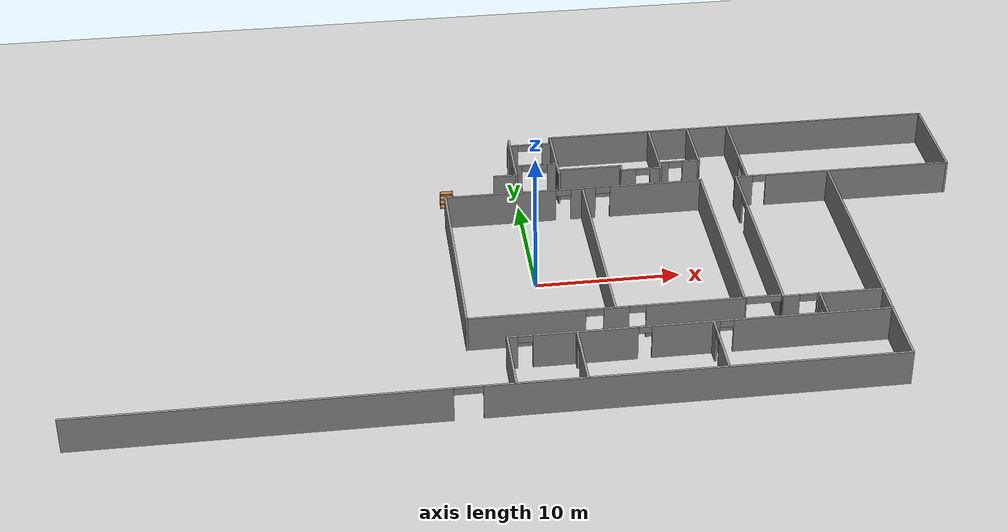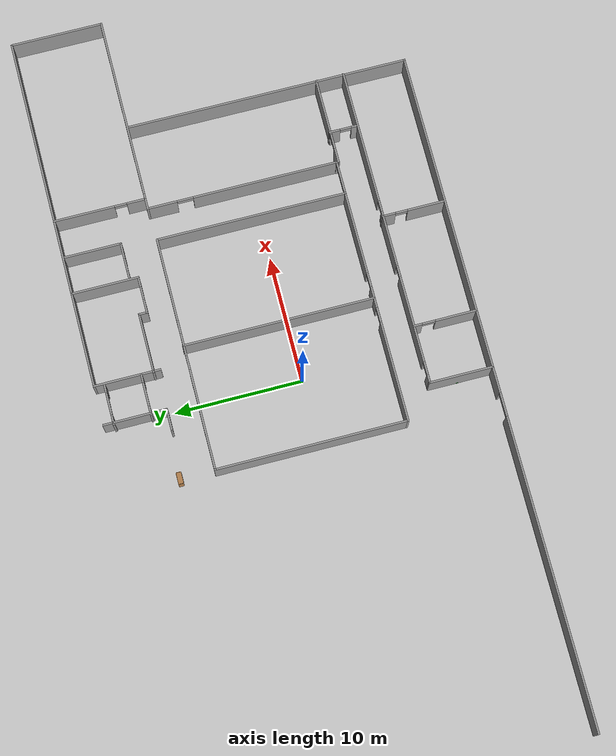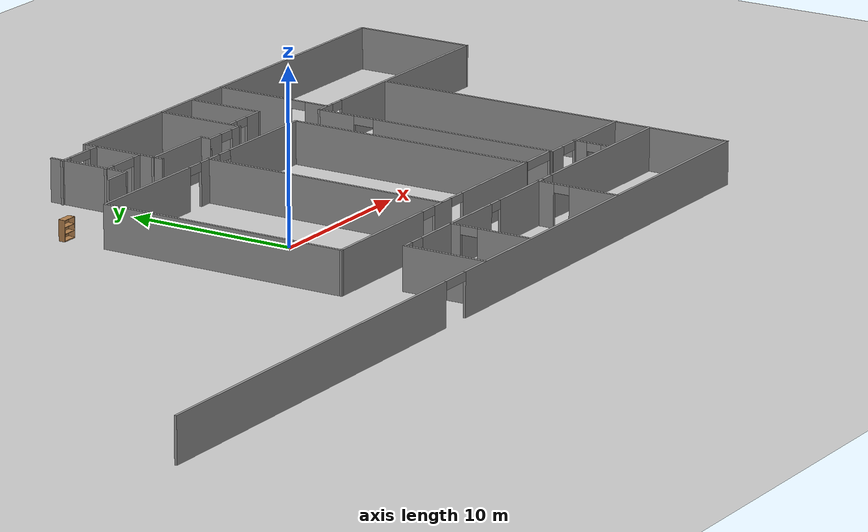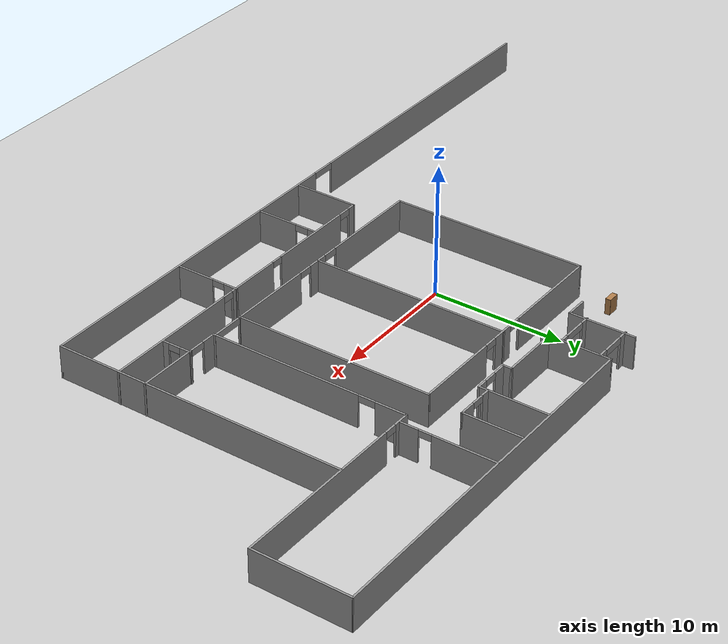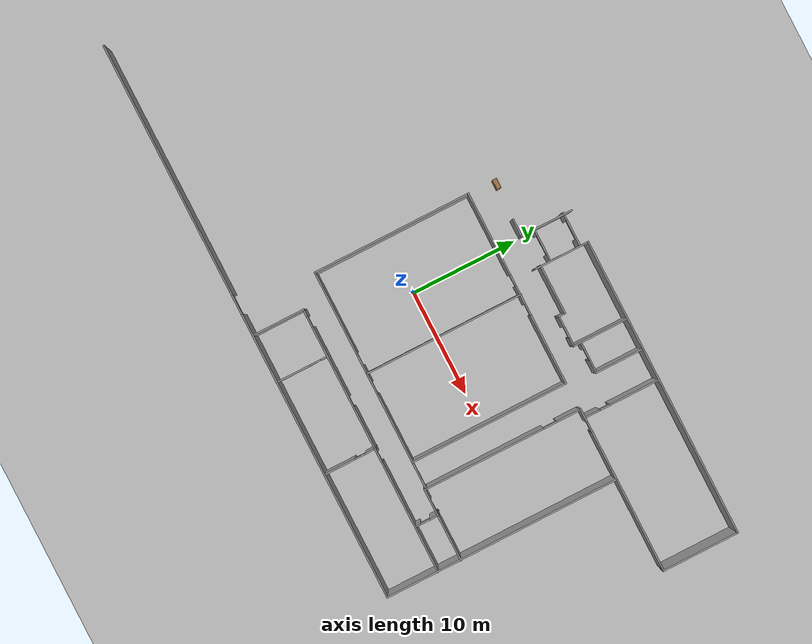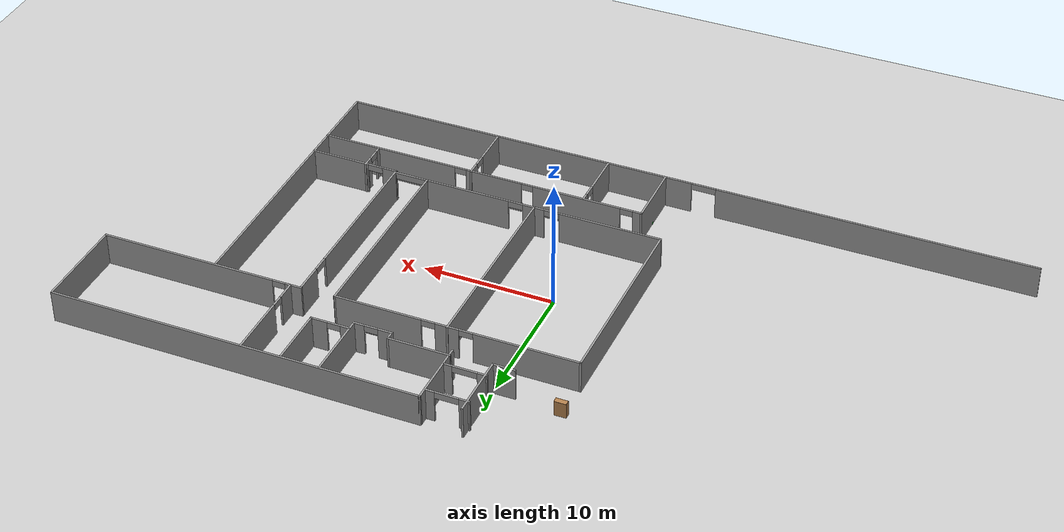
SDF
<sdf version="1.4">
 <world name="default">
  <model name="ground_plane">
   <static>1</static>
   <link name="link">
    <collision name="collision">
     <geometry><plane><normal>0 0 1</normal><size>100 100</size></plane></geometry>
    </collision>
    <visual name="visual">
     <cast_shadows>0</cast_shadows>
     <geometry><plane><normal>0 0 1</normal><size>100 100</size></plane></geometry>
     <material>
      <script><uri>file://media/materials/scripts/gazebo.material</uri><name>Gazebo/Grey</name></script>
     </material>
    </visual>
    <velocity_decay><linear>0</linear><angular>0</angular></velocity_decay>
   </link>
  </model>
  <model name="Shannon">
   <pose>-0.0406 0.68299 0 0 -0 0</pose>
   <link name="Wall_10">
    <collision name="Wall_10_Collision">
     <geometry><box><size>22.25 0.15 2.5</size></box></geometry>
     <pose>0 0 1.25 0 -0 0</pose>
    </collision>
    <visual name="Wall_10_Visual">
     <pose>0 0 1.25 0 -0 0</pose>
     <geometry><box><size>22.25 0.15 2.5</size></box></geometry>
     <material>
      <script><uri>file://media/materials/scripts/gazebo.material</uri><name>Gazebo/Grey</name></script>
      <ambient>1 1 1 1</ambient>
     </material>
    </visual>
    <pose>22.3654 -3.62363 0 0 -0 -1.5708</pose>
    <velocity_decay><linear>0</linear><angular>0</angular></velocity_decay>
   </link>
   <link name="Wall_101">
    <pose>10.5074 -12.1568 0 0 -0 -1.5708</pose>
    <visual name="Wall_101_Visual_0">
     <pose>-1.95368 0 1.25 0 -0 0</pose>
     <geometry><box><size>1.09264 0.15 2.5</size></box></geometry>
     <material>
      <script><uri>file://media/materials/scripts/gazebo.material</uri><name>Gazebo/Grey</name></script>
      <ambient>1 1 1 1</ambient>
     </material>
    </visual>
    <collision name="Wall_101_Collision_0">
     <geometry><box><size>1.09264 0.15 2.5</size></box></geometry>
     <pose>-1.95368 0 1.25 0 -0 0</pose>
    </collision>
    <visual name="Wall_101_Visual_1">
     <pose>1.02674 0 1.25 0 -0 0</pose>
     <geometry><box><size>2.94652 0.15 2.5</size></box></geometry>
     <material>
      <script><uri>file://media/materials/scripts/gazebo.material</uri><name>Gazebo/Grey</name></script>
      <ambient>1 1 1 1</ambient>
     </material>
    </visual>
    <collision name="Wall_101_Collision_1">
     <geometry><box><size>2.94652 0.15 2.5</size></box></geometry>
     <pose>1.02674 0 1.25 0 -0 0</pose>
    </collision>
    <visual name="Wall_101_Visual_2">
     <pose>-0.926938 0 2.25 0 -0 0</pose>
     <geometry><box><size>0.960835 0.15 0.5</size></box></geometry>
     <material>
      <script><uri>file://media/materials/scripts/gazebo.material</uri><name>Gazebo/Grey</name></script>
      <ambient>1 1 1 1</ambient>
     </material>
    </visual>
    <collision name="Wall_101_Collision_2">
     <geometry><box><size>0.960835 0.15 0.5</size></box></geometry>
     <pose>-0.926938 0 2.25 0 -0 0</pose>
    </collision>
    <velocity_decay><linear>0</linear><angular>0</angular></velocity_decay>
   </link>
   <link name="Wall_111">
    <pose>14.3103 -7.43874 0 0 -0 0</pose>
    <visual name="Wall_111_Visual_0">
     <pose>-1.26476 0 1.25 0 -0 0</pose>
     <geometry><box><size>0.220488 0.15 2.5</size></box></geometry>
     <material>
      <script><uri>file://media/materials/scripts/gazebo.material</uri><name>Gazebo/Grey</name></script>
      <ambient>1 1 1 1</ambient>
     </material>
    </visual>
    <collision name="Wall_111_Collision_0">
     <geometry><box><size>0.220488 0.15 2.5</size></box></geometry>
     <pose>-1.26476 0 1.25 0 -0 0</pose>
    </collision>
    <visual name="Wall_111_Visual_1">
     <pose>1.27845 0 1.25 0 -0 0</pose>
     <geometry><box><size>0.193101 0.15 2.5</size></box></geometry>
     <material>
      <script><uri>file://media/materials/scripts/gazebo.material</uri><name>Gazebo/Grey</name></script>
      <ambient>1 1 1 1</ambient>
     </material>
    </visual>
    <collision name="Wall_111_Collision_1">
     <geometry><box><size>0.193101 0.15 2.5</size></box></geometry>
     <pose>1.27845 0 1.25 0 -0 0</pose>
    </collision>
    <visual name="Wall_111_Visual_2">
     <pose>0.013694 0 2.25 0 -0 0</pose>
     <geometry><box><size>2.33641 0.15 0.5</size></box></geometry>
     <material>
      <script><uri>file://media/materials/scripts/gazebo.material</uri><name>Gazebo/Grey</name></script>
      <ambient>1 1 1 1</ambient>
     </material>
    </visual>
    <collision name="Wall_111_Collision_2">
     <geometry><box><size>2.33641 0.15 0.5</size></box></geometry>
     <pose>0.013694 0 2.25 0 -0 0</pose>
    </collision>
    <velocity_decay><linear>0</linear><angular>0</angular></velocity_decay>
   </link>
   <link name="Wall_12">
    <pose>-4.30964 -14.6736 0 0 -0 3.14159</pose>
    <visual name="Wall_12_Visual_0">
     <pose>-13.02 0 1.25 0 -0 0</pose>
     <geometry><box><size>27.46 0.15 2.5</size></box></geometry>
     <material>
      <script><uri>file://media/materials/scripts/gazebo.material</uri><name>Gazebo/Grey</name></script>
      <ambient>1 1 1 1</ambient>
     </material>
    </visual>
    <collision name="Wall_12_Collision_0">
     <geometry><box><size>27.46 0.15 2.5</size></box></geometry>
     <pose>-13.02 0 1.25 0 -0 0</pose>
    </collision>
    <visual name="Wall_12_Visual_1">
     <pose>14.6599 0 1.25 0 -0 0</pose>
     <geometry><box><size>24.1801 0.15 2.5</size></box></geometry>
     <material>
      <script><uri>file://media/materials/scripts/gazebo.material</uri><name>Gazebo/Grey</name></script>
      <ambient>1 1 1 1</ambient>
     </material>
    </visual>
    <collision name="Wall_12_Collision_1">
     <geometry><box><size>24.1801 0.15 2.5</size></box></geometry>
     <pose>14.6599 0 1.25 0 -0 0</pose>
    </collision>
    <visual name="Wall_12_Visual_2">
     <pose>1.63993 0 2.25 0 -0 0</pose>
     <geometry><box><size>1.85983 0.15 0.5</size></box></geometry>
     <material>
      <script><uri>file://media/materials/scripts/gazebo.material</uri><name>Gazebo/Grey</name></script>
      <ambient>1 1 1 1</ambient>
     </material>
    </visual>
    <collision name="Wall_12_Collision_2">
     <geometry><box><size>1.85983 0.15 0.5</size></box></geometry>
     <pose>1.63993 0 2.25 0 -0 0</pose>
    </collision>
    <velocity_decay><linear>0</linear><angular>0</angular></velocity_decay>
   </link>
   <link name="Wall_120">
    <collision name="Wall_120_Collision">
     <geometry><box><size>28.25 0.15 2.5</size></box></geometry>
     <pose>0 0 1.25 0 -0 0</pose>
    </collision>
    <visual name="Wall_120_Visual">
     <pose>0 0 1.25 0 -0 0</pose>
     <geometry><box><size>28.25 0.15 2.5</size></box></geometry>
     <material>
      <script><uri>file://media/materials/scripts/gazebo.material</uri><name>Gazebo/Grey</name></script>
      <ambient>1 1 1 1</ambient>
     </material>
    </visual>
    <pose>17.1298 14.6743 0 0 -0 0</pose>
    <velocity_decay><linear>0</linear><angular>0</angular></velocity_decay>
   </link>
   <link name="Wall_122">
    <pose>1.42965 13.9029 0 0 -0 0</pose>
    <visual name="Wall_122_Visual_0">
     <pose>-1.23095 0 1.25 0 -0 0</pose>
     <geometry><box><size>0.788098 0.15 2.5</size></box></geometry>
     <material>
      <script><uri>file://media/materials/scripts/gazebo.material</uri><name>Gazebo/Grey</name></script>
      <ambient>1 1 1 1</ambient>
     </material>
    </visual>
    <collision name="Wall_122_Collision_0">
     <geometry><box><size>0.788098 0.15 2.5</size></box></geometry>
     <pose>-1.23095 0 1.25 0 -0 0</pose>
    </collision>
    <visual name="Wall_122_Visual_1">
     <pose>1.28137 0 1.25 0 -0 0</pose>
     <geometry><box><size>0.687253 0.15 2.5</size></box></geometry>
     <material>
      <script><uri>file://media/materials/scripts/gazebo.material</uri><name>Gazebo/Grey</name></script>
      <ambient>1 1 1 1</ambient>
     </material>
    </visual>
    <collision name="Wall_122_Collision_1">
     <geometry><box><size>0.687253 0.15 2.5</size></box></geometry>
     <pose>1.28137 0 1.25 0 -0 0</pose>
    </collision>
    <visual name="Wall_122_Visual_2">
     <pose>0.050423 0 2.25 0 -0 0</pose>
     <geometry><box><size>1.77465 0.15 0.5</size></box></geometry>
     <material>
      <script><uri>file://media/materials/scripts/gazebo.material</uri><name>Gazebo/Grey</name></script>
      <ambient>1 1 1 1</ambient>
     </material>
    </visual>
    <collision name="Wall_122_Collision_2">
     <geometry><box><size>1.77465 0.15 0.5</size></box></geometry>
     <pose>0.050423 0 2.25 0 -0 0</pose>
    </collision>
    <velocity_decay><linear>0</linear><angular>0</angular></velocity_decay>
   </link>
   <link name="Wall_29">
    <collision name="Wall_29_Collision">
     <geometry><box><size>5 0.15 2.5</size></box></geometry>
     <pose>0 0 1.25 0 -0 0</pose>
    </collision>
    <visual name="Wall_29_Visual">
     <pose>0 0 1.25 0 -0 0</pose>
     <geometry><box><size>5 0.15 2.5</size></box></geometry>
     <material>
      <script><uri>file://media/materials/scripts/gazebo.material</uri><name>Gazebo/Grey</name></script>
      <ambient>1 1 1 1</ambient>
     </material>
    </visual>
    <pose>-2.95728 -12.2072 0 0 -0 1.5708</pose>
    <velocity_decay><linear>0</linear><angular>0</angular></velocity_decay>
   </link>
   <link name="Wall_3">
    <collision name="Wall_3_Collision">
     <geometry><box><size>7.25 0.15 2.5</size></box></geometry>
     <pose>0 0 1.25 0 -0 0</pose>
    </collision>
    <visual name="Wall_3_Visual">
     <pose>0 0 1.25 0 -0 0</pose>
     <geometry><box><size>7.25 0.15 2.5</size></box></geometry>
     <material>
      <script><uri>file://media/materials/scripts/gazebo.material</uri><name>Gazebo/Grey</name></script>
      <ambient>1 1 1 1</ambient>
     </material>
    </visual>
    <pose>31.1997 11.0602 0 0 -0 -1.57077</pose>
    <velocity_decay><linear>0</linear><angular>0</angular></velocity_decay>
   </link>
   <link name="Wall_30">
    <pose>9.71772 -9.78221 0 0 -0 0</pose>
    <visual name="Wall_30_Visual_0">
     <pose>-12.3837 0 1.25 0 -0 0</pose>
     <geometry><box><size>0.732546 0.15 2.5</size></box></geometry>
     <material>
      <script><uri>file://media/materials/scripts/gazebo.material</uri><name>Gazebo/Grey</name></script>
      <ambient>1 1 1 1</ambient>
     </material>
    </visual>
    <collision name="Wall_30_Collision_0">
     <geometry><box><size>0.732546 0.15 2.5</size></box></geometry>
     <pose>-12.3837 0 1.25 0 -0 0</pose>
    </collision>
    <visual name="Wall_30_Visual_1">
     <pose>-7.59417 0 1.25 0 -0 0</pose>
     <geometry><box><size>6.86407 0.15 2.5</size></box></geometry>
     <material>
      <script><uri>file://media/materials/scripts/gazebo.material</uri><name>Gazebo/Grey</name></script>
      <ambient>1 1 1 1</ambient>
     </material>
    </visual>
    <collision name="Wall_30_Collision_1">
     <geometry><box><size>6.86407 0.15 2.5</size></box></geometry>
     <pose>-7.59417 0 1.25 0 -0 0</pose>
    </collision>
    <visual name="Wall_30_Visual_2">
     <pose>-1.03326 0 1.25 0 -0 0</pose>
     <geometry><box><size>4.45774 0.15 2.5</size></box></geometry>
     <material>
      <script><uri>file://media/materials/scripts/gazebo.material</uri><name>Gazebo/Grey</name></script>
      <ambient>1 1 1 1</ambient>
     </material>
    </visual>
    <collision name="Wall_30_Collision_2">
     <geometry><box><size>4.45774 0.15 2.5</size></box></geometry>
     <pose>-1.03326 0 1.25 0 -0 0</pose>
    </collision>
    <visual name="Wall_30_Visual_3">
     <pose>7.42281 0 1.25 0 -0 0</pose>
     <geometry><box><size>10.6544 0.15 2.5</size></box></geometry>
     <material>
      <script><uri>file://media/materials/scripts/gazebo.material</uri><name>Gazebo/Grey</name></script>
      <ambient>1 1 1 1</ambient>
     </material>
    </visual>
    <collision name="Wall_30_Collision_3">
     <geometry><box><size>10.6544 0.15 2.5</size></box></geometry>
     <pose>7.42281 0 1.25 0 -0 0</pose>
    </collision>
    <visual name="Wall_30_Visual_4">
     <pose>-11.5218 0 2.25 0 -0 0</pose>
     <geometry><box><size>0.991253 0.15 0.5</size></box></geometry>
     <material>
      <script><uri>file://media/materials/scripts/gazebo.material</uri><name>Gazebo/Grey</name></script>
      <ambient>1 1 1 1</ambient>
     </material>
    </visual>
    <collision name="Wall_30_Collision_4">
     <geometry><box><size>0.991253 0.15 0.5</size></box></geometry>
     <pose>-11.5218 0 2.25 0 -0 0</pose>
    </collision>
    <visual name="Wall_30_Visual_5">
     <pose>-3.71213 0 2.25 0 -0 0</pose>
     <geometry><box><size>0.9 0.15 0.5</size></box></geometry>
     <material>
      <script><uri>file://media/materials/scripts/gazebo.material</uri><name>Gazebo/Grey</name></script>
      <ambient>1 1 1 1</ambient>
     </material>
    </visual>
    <collision name="Wall_30_Collision_5">
     <geometry><box><size>0.9 0.15 0.5</size></box></geometry>
     <pose>-3.71213 0 2.25 0 -0 0</pose>
    </collision>
    <visual name="Wall_30_Visual_6">
     <pose>1.64561 0 2.25 0 -0 0</pose>
     <geometry><box><size>0.9 0.15 0.5</size></box></geometry>
     <material>
      <script><uri>file://media/materials/scripts/gazebo.material</uri><name>Gazebo/Grey</name></script>
      <ambient>1 1 1 1</ambient>
     </material>
    </visual>
    <collision name="Wall_30_Collision_6">
     <geometry><box><size>0.9 0.15 0.5</size></box></geometry>
     <pose>1.64561 0 2.25 0 -0 0</pose>
    </collision>
    <velocity_decay><linear>0</linear><angular>0</angular></velocity_decay>
   </link>
   <link name="Wall_34">
    <pose>3.83527 7.41126 0 0 -0 0</pose>
    <visual name="Wall_34_Visual_0">
     <pose>-5.27347 0 1.25 0 -0 0</pose>
     <geometry><box><size>7.95306 0.15 2.5</size></box></geometry>
     <material>
      <script><uri>file://media/materials/scripts/gazebo.material</uri><name>Gazebo/Grey</name></script>
      <ambient>1 1 1 1</ambient>
     </material>
    </visual>
    <collision name="Wall_34_Collision_0">
     <geometry><box><size>7.95306 0.15 2.5</size></box></geometry>
     <pose>-5.27347 0 1.25 0 -0 0</pose>
    </collision>
    <visual name="Wall_34_Visual_1">
     <pose>0.653062 0 1.25 0 -0 0</pose>
     <geometry><box><size>1.78 0.15 2.5</size></box></geometry>
     <material>
      <script><uri>file://media/materials/scripts/gazebo.material</uri><name>Gazebo/Grey</name></script>
      <ambient>1 1 1 1</ambient>
     </material>
    </visual>
    <collision name="Wall_34_Collision_1">
     <geometry><box><size>1.78 0.15 2.5</size></box></geometry>
     <pose>0.653062 0 1.25 0 -0 0</pose>
    </collision>
    <visual name="Wall_34_Visual_2">
     <pose>5.91653 0 1.25 0 -0 0</pose>
     <geometry><box><size>6.66694 0.15 2.5</size></box></geometry>
     <material>
      <script><uri>file://media/materials/scripts/gazebo.material</uri><name>Gazebo/Grey</name></script>
      <ambient>1 1 1 1</ambient>
     </material>
    </visual>
    <collision name="Wall_34_Collision_2">
     <geometry><box><size>6.66694 0.15 2.5</size></box></geometry>
     <pose>5.91653 0 1.25 0 -0 0</pose>
    </collision>
    <visual name="Wall_34_Visual_3">
     <pose>-0.766938 0 2.25 0 -0 0</pose>
     <geometry><box><size>1.06 0.15 0.5</size></box></geometry>
     <material>
      <script><uri>file://media/materials/scripts/gazebo.material</uri><name>Gazebo/Grey</name></script>
      <ambient>1 1 1 1</ambient>
     </material>
    </visual>
    <collision name="Wall_34_Collision_3">
     <geometry><box><size>1.06 0.15 0.5</size></box></geometry>
     <pose>-0.766938 0 2.25 0 -0 0</pose>
    </collision>
    <visual name="Wall_34_Visual_4">
     <pose>2.06306 0 2.25 0 -0 0</pose>
     <geometry><box><size>1.04 0.15 0.5</size></box></geometry>
     <material>
      <script><uri>file://media/materials/scripts/gazebo.material</uri><name>Gazebo/Grey</name></script>
      <ambient>1 1 1 1</ambient>
     </material>
    </visual>
    <collision name="Wall_34_Collision_4">
     <geometry><box><size>1.04 0.15 0.5</size></box></geometry>
     <pose>2.06306 0 2.25 0 -0 0</pose>
    </collision>
    <velocity_decay><linear>0</linear><angular>0</angular></velocity_decay>
   </link>
   <link name="Wall_35">
    <collision name="Wall_35_Collision">
     <geometry><box><size>15 0.15 2.5</size></box></geometry>
     <pose>0 0 1.25 0 -0 0</pose>
    </collision>
    <visual name="Wall_35_Visual">
     <pose>0 0 1.25 0 -0 0</pose>
     <geometry><box><size>15 0.15 2.5</size></box></geometry>
     <material>
      <script><uri>file://media/materials/scripts/gazebo.material</uri><name>Gazebo/Grey</name></script>
      <ambient>1 1 1 1</ambient>
     </material>
    </visual>
    <pose>13.0103 -0.013741 0 0 -0 -1.5708</pose>
    <velocity_decay><linear>0</linear><angular>0</angular></velocity_decay>
   </link>
   <link name="Wall_36">
    <pose>3.83527 -7.43874 0 0 -0 3.14159</pose>
    <visual name="Wall_36_Visual_0">
     <pose>-5.93674 0 1.25 0 -0 0</pose>
     <geometry><box><size>6.62653 0.15 2.5</size></box></geometry>
     <material>
      <script><uri>file://media/materials/scripts/gazebo.material</uri><name>Gazebo/Grey</name></script>
      <ambient>1 1 1 1</ambient>
     </material>
    </visual>
    <collision name="Wall_36_Collision_0">
     <geometry><box><size>6.62653 0.15 2.5</size></box></geometry>
     <pose>-5.93674 0 1.25 0 -0 0</pose>
    </collision>
    <visual name="Wall_36_Visual_1">
     <pose>-0.66258 0 1.25 0 -0 0</pose>
     <geometry><box><size>1.69618 0.15 2.5</size></box></geometry>
     <material>
      <script><uri>file://media/materials/scripts/gazebo.material</uri><name>Gazebo/Grey</name></script>
      <ambient>1 1 1 1</ambient>
     </material>
    </visual>
    <collision name="Wall_36_Collision_1">
     <geometry><box><size>1.69618 0.15 2.5</size></box></geometry>
     <pose>-0.66258 0 1.25 0 -0 0</pose>
    </collision>
    <visual name="Wall_36_Visual_2">
     <pose>5.30076 0 1.25 0 -0 0</pose>
     <geometry><box><size>7.89849 0.15 2.5</size></box></geometry>
     <material>
      <script><uri>file://media/materials/scripts/gazebo.material</uri><name>Gazebo/Grey</name></script>
      <ambient>1 1 1 1</ambient>
     </material>
    </visual>
    <collision name="Wall_36_Collision_2">
     <geometry><box><size>7.89849 0.15 2.5</size></box></geometry>
     <pose>5.30076 0 1.25 0 -0 0</pose>
    </collision>
    <visual name="Wall_36_Visual_3">
     <pose>-2.06707 0 2.25 0 -0 0</pose>
     <geometry><box><size>1.1128 0.15 0.5</size></box></geometry>
     <material>
      <script><uri>file://media/materials/scripts/gazebo.material</uri><name>Gazebo/Grey</name></script>
      <ambient>1 1 1 1</ambient>
     </material>
    </visual>
    <collision name="Wall_36_Collision_3">
     <geometry><box><size>1.1128 0.15 0.5</size></box></geometry>
     <pose>-2.06707 0 2.25 0 -0 0</pose>
    </collision>
    <visual name="Wall_36_Visual_4">
     <pose>0.76851 0 2.25 0 -0 0</pose>
     <geometry><box><size>1.166 0.15 0.5</size></box></geometry>
     <material>
      <script><uri>file://media/materials/scripts/gazebo.material</uri><name>Gazebo/Grey</name></script>
      <ambient>1 1 1 1</ambient>
     </material>
    </visual>
    <collision name="Wall_36_Collision_4">
     <geometry><box><size>1.166 0.15 0.5</size></box></geometry>
     <pose>0.76851 0 2.25 0 -0 0</pose>
    </collision>
    <velocity_decay><linear>0</linear><angular>0</angular></velocity_decay>
   </link>
   <link name="Wall_37">
    <collision name="Wall_37_Collision">
     <geometry><box><size>15 0.15 2.5</size></box></geometry>
     <pose>0 0 1.25 0 -0 0</pose>
    </collision>
    <visual name="Wall_37_Visual">
     <pose>0 0 1.25 0 -0 0</pose>
     <geometry><box><size>15 0.15 2.5</size></box></geometry>
     <material>
      <script><uri>file://media/materials/scripts/gazebo.material</uri><name>Gazebo/Grey</name></script>
      <ambient>1 1 1 1</ambient>
     </material>
    </visual>
    <pose>-5.33974 -0.013741 0 0 -0 1.5708</pose>
    <velocity_decay><linear>0</linear><angular>0</angular></velocity_decay>
   </link>
   <link name="Wall_39">
    <collision name="Wall_39_Collision">
     <geometry><box><size>15 0.15 2.5</size></box></geometry>
     <pose>0 0 1.25 0 -0 0</pose>
    </collision>
    <visual name="Wall_39_Visual">
     <pose>0 0 1.25 0 -0 0</pose>
     <geometry><box><size>15 0.15 2.5</size></box></geometry>
     <material>
      <script><uri>file://media/materials/scripts/gazebo.material</uri><name>Gazebo/Grey</name></script>
      <ambient>1 1 1 1</ambient>
     </material>
    </visual>
    <pose>4.44451 0.03252 0 0 -0 -1.5708</pose>
    <velocity_decay><linear>0</linear><angular>0</angular></velocity_decay>
   </link>
   <link name="Wall_4">
    <pose>23.3998 7.51045 0 0 -0 3.14159</pose>
    <visual name="Wall_4_Visual_0">
     <pose>-1.13283 0 1.25 0 -0 0</pose>
     <geometry><box><size>13.4843 0.15 2.5</size></box></geometry>
     <material>
      <script><uri>file://media/materials/scripts/gazebo.material</uri><name>Gazebo/Grey</name></script>
      <ambient>1 1 1 1</ambient>
     </material>
    </visual>
    <collision name="Wall_4_Collision_0">
     <geometry><box><size>13.4843 0.15 2.5</size></box></geometry>
     <pose>-1.13283 0 1.25 0 -0 0</pose>
    </collision>
    <visual name="Wall_4_Visual_1">
     <pose>7.22409 0 1.25 0 -0 0</pose>
     <geometry><box><size>1.30183 0.15 2.5</size></box></geometry>
     <material>
      <script><uri>file://media/materials/scripts/gazebo.material</uri><name>Gazebo/Grey</name></script>
      <ambient>1 1 1 1</ambient>
     </material>
    </visual>
    <collision name="Wall_4_Collision_1">
     <geometry><box><size>1.30183 0.15 2.5</size></box></geometry>
     <pose>7.22409 0 1.25 0 -0 0</pose>
    </collision>
    <visual name="Wall_4_Visual_2">
     <pose>6.09125 0 2.25 0 -0 0</pose>
     <geometry><box><size>0.96384 0.15 0.5</size></box></geometry>
     <material>
      <script><uri>file://media/materials/scripts/gazebo.material</uri><name>Gazebo/Grey</name></script>
      <ambient>1 1 1 1</ambient>
     </material>
    </visual>
    <collision name="Wall_4_Collision_2">
     <geometry><box><size>0.96384 0.15 0.5</size></box></geometry>
     <pose>6.09125 0 2.25 0 -0 0</pose>
    </collision>
    <velocity_decay><linear>0</linear><angular>0</angular></velocity_decay>
   </link>
   <link name="Wall_7">
    <pose>15.5998 -0.039555 0 0 -0 -1.5708</pose>
    <visual name="Wall_7_Visual_0">
     <pose>-6.43181 0 1.25 0 -0 0</pose>
     <geometry><box><size>2.38638 0.15 2.5</size></box></geometry>
     <material>
      <script><uri>file://media/materials/scripts/gazebo.material</uri><name>Gazebo/Grey</name></script>
      <ambient>1 1 1 1</ambient>
     </material>
    </visual>
    <collision name="Wall_7_Collision_0">
     <geometry><box><size>2.38638 0.15 2.5</size></box></geometry>
     <pose>-6.43181 0 1.25 0 -0 0</pose>
    </collision>
    <visual name="Wall_7_Visual_1">
     <pose>1.82819 0 1.25 0 -0 0</pose>
     <geometry><box><size>11.5936 0.15 2.5</size></box></geometry>
     <material>
      <script><uri>file://media/materials/scripts/gazebo.material</uri><name>Gazebo/Grey</name></script>
      <ambient>1 1 1 1</ambient>
     </material>
    </visual>
    <collision name="Wall_7_Collision_1">
     <geometry><box><size>11.5936 0.15 2.5</size></box></geometry>
     <pose>1.82819 0 1.25 0 -0 0</pose>
    </collision>
    <visual name="Wall_7_Visual_2">
     <pose>-4.60362 0 2.25 0 -0 0</pose>
     <geometry><box><size>1.27 0.15 0.5</size></box></geometry>
     <material>
      <script><uri>file://media/materials/scripts/gazebo.material</uri><name>Gazebo/Grey</name></script>
      <ambient>1 1 1 1</ambient>
     </material>
    </visual>
    <collision name="Wall_7_Collision_2">
     <geometry><box><size>1.27 0.15 0.5</size></box></geometry>
     <pose>-4.60362 0 2.25 0 -0 0</pose>
    </collision>
    <velocity_decay><linear>0</linear><angular>0</angular></velocity_decay>
   </link>
   <link name="Wall_78">
    <collision name="Wall_78_Collision">
     <geometry><box><size>1.75 0.15 2.5</size></box></geometry>
     <pose>0 0 1.25 0 -0 0</pose>
    </collision>
    <visual name="Wall_78_Visual">
     <pose>0 0 1.25 0 -0 0</pose>
     <geometry><box><size>1.75 0.15 2.5</size></box></geometry>
     <material>
      <script><uri>file://media/materials/scripts/gazebo.material</uri><name>Gazebo/Grey</name></script>
      <ambient>1 1 1 1</ambient>
     </material>
    </visual>
    <pose>-0.792577 9.81684 0 0 -0 0</pose>
    <velocity_decay><linear>0</linear><angular>0</angular></velocity_decay>
   </link>
   <link name="Wall_8">
    <pose>18.9967 -7.59133 0 0 -0 -0.000523</pose>
    <visual name="Wall_8_Visual_0">
     <pose>-2.88515 0 1.25 0 -0 0</pose>
     <geometry><box><size>1.17355 0.15 2.5</size></box></geometry>
     <material>
      <script><uri>file://media/materials/scripts/gazebo.material</uri><name>Gazebo/Grey</name></script>
      <ambient>1 1 1 1</ambient>
     </material>
    </visual>
    <collision name="Wall_8_Collision_0">
     <geometry><box><size>1.17355 0.15 2.5</size></box></geometry>
     <pose>-2.88515 0 1.25 0 -0 0</pose>
    </collision>
    <visual name="Wall_8_Visual_1">
     <pose>1.17679 0 1.25 0 -0 0</pose>
     <geometry><box><size>4.59027 0.15 2.5</size></box></geometry>
     <material>
      <script><uri>file://media/materials/scripts/gazebo.material</uri><name>Gazebo/Grey</name></script>
      <ambient>1 1 1 1</ambient>
     </material>
    </visual>
    <collision name="Wall_8_Collision_1">
     <geometry><box><size>4.59027 0.15 2.5</size></box></geometry>
     <pose>1.17679 0 1.25 0 -0 0</pose>
    </collision>
    <visual name="Wall_8_Visual_2">
     <pose>-1.70836 0 2.25 0 -0 0</pose>
     <geometry><box><size>1.18004 0.15 0.5</size></box></geometry>
     <material>
      <script><uri>file://media/materials/scripts/gazebo.material</uri><name>Gazebo/Grey</name></script>
      <ambient>1 1 1 1</ambient>
     </material>
    </visual>
    <collision name="Wall_8_Collision_2">
     <geometry><box><size>1.18004 0.15 0.5</size></box></geometry>
     <pose>-1.70836 0 2.25 0 -0 0</pose>
    </collision>
    <velocity_decay><linear>0</linear><angular>0</angular></velocity_decay>
   </link>
   <link name="Wall_80">
    <collision name="Wall_80_Collision">
     <geometry><box><size>5 0.15 2.5</size></box></geometry>
     <pose>0 0 1.25 0 -0 0</pose>
    </collision>
    <visual name="Wall_80_Visual">
     <pose>0 0 1.25 0 -0 0</pose>
     <geometry><box><size>5 0.15 2.5</size></box></geometry>
     <material>
      <script><uri>file://media/materials/scripts/gazebo.material</uri><name>Gazebo/Grey</name></script>
      <ambient>1 1 1 1</ambient>
     </material>
    </visual>
    <pose>0.007423 12.2418 0 0 -0 1.5708</pose>
    <velocity_decay><linear>0</linear><angular>0</angular></velocity_decay>
   </link>
   <link name="Wall_82">
    <pose>1.46091 11.0428 0 0 -0 0</pose>
    <visual name="Wall_82_Visual_0">
     <pose>-1.25629 0 1.25 0 -0 0</pose>
     <geometry><box><size>0.737414 0.15 2.5</size></box></geometry>
     <material>
      <script><uri>file://media/materials/scripts/gazebo.material</uri><name>Gazebo/Grey</name></script>
      <ambient>1 1 1 1</ambient>
     </material>
    </visual>
    <collision name="Wall_82_Collision_0">
     <geometry><box><size>0.737414 0.15 2.5</size></box></geometry>
     <pose>-1.25629 0 1.25 0 -0 0</pose>
    </collision>
    <visual name="Wall_82_Visual_1">
     <pose>1.28871 0 1.25 0 -0 0</pose>
     <geometry><box><size>0.672586 0.15 2.5</size></box></geometry>
     <material>
      <script><uri>file://media/materials/scripts/gazebo.material</uri><name>Gazebo/Grey</name></script>
      <ambient>1 1 1 1</ambient>
     </material>
    </visual>
    <collision name="Wall_82_Collision_1">
     <geometry><box><size>0.672586 0.15 2.5</size></box></geometry>
     <pose>1.28871 0 1.25 0 -0 0</pose>
    </collision>
    <visual name="Wall_82_Visual_2">
     <pose>0.032414 0 2.25 0 -0 0</pose>
     <geometry><box><size>1.84 0.15 0.5</size></box></geometry>
     <material>
      <script><uri>file://media/materials/scripts/gazebo.material</uri><name>Gazebo/Grey</name></script>
      <ambient>1 1 1 1</ambient>
     </material>
    </visual>
    <collision name="Wall_82_Collision_2">
     <geometry><box><size>1.84 0.15 0.5</size></box></geometry>
     <pose>0.032414 0 2.25 0 -0 0</pose>
    </collision>
    <velocity_decay><linear>0</linear><angular>0</angular></velocity_decay>
   </link>
   <link name="Wall_84">
    <collision name="Wall_84_Collision">
     <geometry><box><size>5.25 0.15 2.5</size></box></geometry>
     <pose>0 0 1.25 0 -0 0</pose>
    </collision>
    <visual name="Wall_84_Visual">
     <pose>0 0 1.25 0 -0 0</pose>
     <geometry><box><size>5.25 0.15 2.5</size></box></geometry>
     <material>
      <script><uri>file://media/materials/scripts/gazebo.material</uri><name>Gazebo/Grey</name></script>
      <ambient>1 1 1 1</ambient>
     </material>
    </visual>
    <pose>3.07981 12.1243 0 0 -0 -1.5708</pose>
    <velocity_decay><linear>0</linear><angular>0</angular></velocity_decay>
   </link>
   <link name="Wall_86">
    <collision name="Wall_86_Collision">
     <geometry><box><size>4.75 0.15 2.5</size></box></geometry>
     <pose>0 0 1.25 0 -0 0</pose>
    </collision>
    <visual name="Wall_86_Visual">
     <pose>0 0 1.25 0 -0 0</pose>
     <geometry><box><size>4.75 0.15 2.5</size></box></geometry>
     <material>
      <script><uri>file://media/materials/scripts/gazebo.material</uri><name>Gazebo/Grey</name></script>
      <ambient>1 1 1 1</ambient>
     </material>
    </visual>
    <pose>5.33354 10.0944 0 0 -0 0</pose>
    <velocity_decay><linear>0</linear><angular>0</angular></velocity_decay>
   </link>
   <link name="Wall_87">
    <collision name="Wall_87_Collision">
     <geometry><box><size>0.75 0.15 2.5</size></box></geometry>
     <pose>0 0 1.25 0 -0 0</pose>
    </collision>
    <visual name="Wall_87_Visual">
     <pose>0 0 1.25 0 -0 0</pose>
     <geometry><box><size>0.75 0.15 2.5</size></box></geometry>
     <material>
      <script><uri>file://media/materials/scripts/gazebo.material</uri><name>Gazebo/Grey</name></script>
      <ambient>1 1 1 1</ambient>
     </material>
    </visual>
    <pose>7.63354 9.79441 0 0 -0 -1.5708</pose>
    <velocity_decay><linear>0</linear><angular>0</angular></velocity_decay>
   </link>
   <link name="Wall_88">
    <pose>9.05855 9.49441 0 0 -0 0</pose>
    <visual name="Wall_88_Visual_0">
     <pose>-0.945109 0 1.25 0 -0 0</pose>
     <geometry><box><size>1.10978 0.15 2.5</size></box></geometry>
     <material>
      <script><uri>file://media/materials/scripts/gazebo.material</uri><name>Gazebo/Grey</name></script>
      <ambient>1 1 1 1</ambient>
     </material>
    </visual>
    <collision name="Wall_88_Collision_0">
     <geometry><box><size>1.10978 0.15 2.5</size></box></geometry>
     <pose>-0.945109 0 1.25 0 -0 0</pose>
    </collision>
    <visual name="Wall_88_Visual_1">
     <pose>1.06489 0 1.25 0 -0 0</pose>
     <geometry><box><size>0.870219 0.15 2.5</size></box></geometry>
     <material>
      <script><uri>file://media/materials/scripts/gazebo.material</uri><name>Gazebo/Grey</name></script>
      <ambient>1 1 1 1</ambient>
     </material>
    </visual>
    <collision name="Wall_88_Collision_1">
     <geometry><box><size>0.870219 0.15 2.5</size></box></geometry>
     <pose>1.06489 0 1.25 0 -0 0</pose>
    </collision>
    <visual name="Wall_88_Visual_2">
     <pose>0.119781 0 2.25 0 -0 0</pose>
     <geometry><box><size>1.02 0.15 0.5</size></box></geometry>
     <material>
      <script><uri>file://media/materials/scripts/gazebo.material</uri><name>Gazebo/Grey</name></script>
      <ambient>1 1 1 1</ambient>
     </material>
    </visual>
    <collision name="Wall_88_Collision_2">
     <geometry><box><size>1.02 0.15 0.5</size></box></geometry>
     <pose>0.119781 0 2.25 0 -0 0</pose>
    </collision>
    <velocity_decay><linear>0</linear><angular>0</angular></velocity_decay>
   </link>
   <link name="Wall_89">
    <collision name="Wall_89_Collision">
     <geometry><box><size>5.25 0.15 2.5</size></box></geometry>
     <pose>0 0 1.25 0 -0 0</pose>
    </collision>
    <visual name="Wall_89_Visual">
     <pose>0 0 1.25 0 -0 0</pose>
     <geometry><box><size>5.25 0.15 2.5</size></box></geometry>
     <material>
      <script><uri>file://media/materials/scripts/gazebo.material</uri><name>Gazebo/Grey</name></script>
      <ambient>1 1 1 1</ambient>
     </material>
    </visual>
    <pose>10.4835 12.0444 0 0 -0 1.5708</pose>
    <velocity_decay><linear>0</linear><angular>0</angular></velocity_decay>
   </link>
   <link name="Wall_91">
    <pose>11.976 10.1638 0 0 -0 0</pose>
    <visual name="Wall_91_Visual_0">
     <pose>-1.14883 0 1.25 0 -0 0</pose>
     <geometry><box><size>0.702335 0.15 2.5</size></box></geometry>
     <material>
      <script><uri>file://media/materials/scripts/gazebo.material</uri><name>Gazebo/Grey</name></script>
      <ambient>1 1 1 1</ambient>
     </material>
    </visual>
    <collision name="Wall_91_Collision_0">
     <geometry><box><size>0.702335 0.15 2.5</size></box></geometry>
     <pose>-1.14883 0 1.25 0 -0 0</pose>
    </collision>
    <visual name="Wall_91_Visual_1">
     <pose>0.856167 0 1.25 0 -0 0</pose>
     <geometry><box><size>1.28767 0.15 2.5</size></box></geometry>
     <material>
      <script><uri>file://media/materials/scripts/gazebo.material</uri><name>Gazebo/Grey</name></script>
      <ambient>1 1 1 1</ambient>
     </material>
    </visual>
    <collision name="Wall_91_Collision_1">
     <geometry><box><size>1.28767 0.15 2.5</size></box></geometry>
     <pose>0.856167 0 1.25 0 -0 0</pose>
    </collision>
    <visual name="Wall_91_Visual_2">
     <pose>-0.292665 0 2.25 0 -0 0</pose>
     <geometry><box><size>1.01 0.15 0.5</size></box></geometry>
     <material>
      <script><uri>file://media/materials/scripts/gazebo.material</uri><name>Gazebo/Grey</name></script>
      <ambient>1 1 1 1</ambient>
     </material>
    </visual>
    <collision name="Wall_91_Collision_2">
     <geometry><box><size>1.01 0.15 0.5</size></box></geometry>
     <pose>-0.292665 0 2.25 0 -0 0</pose>
    </collision>
    <velocity_decay><linear>0</linear><angular>0</angular></velocity_decay>
   </link>
   <link name="Wall_92">
    <collision name="Wall_92_Collision">
     <geometry><box><size>4.5 0.15 2.5</size></box></geometry>
     <pose>0 0 1.25 0 -0 0</pose>
    </collision>
    <visual name="Wall_92_Visual">
     <pose>0 0 1.25 0 -0 0</pose>
     <geometry><box><size>4.5 0.15 2.5</size></box></geometry>
     <material>
      <script><uri>file://media/materials/scripts/gazebo.material</uri><name>Gazebo/Grey</name></script>
      <ambient>1 1 1 1</ambient>
     </material>
    </visual>
    <pose>13.401 12.3388 0 0 -0 1.5708</pose>
    <velocity_decay><linear>0</linear><angular>0</angular></velocity_decay>
   </link>
   <link name="Wall_94">
    <pose>16.403 11.1232 0 0 -0 1.5708</pose>
    <visual name="Wall_94_Visual_0">
     <pose>-2.88705 0 1.25 0 -0 0</pose>
     <geometry><box><size>1.47589 0.15 2.5</size></box></geometry>
     <material>
      <script><uri>file://media/materials/scripts/gazebo.material</uri><name>Gazebo/Grey</name></script>
      <ambient>1 1 1 1</ambient>
     </material>
    </visual>
    <collision name="Wall_94_Collision_0">
     <geometry><box><size>1.47589 0.15 2.5</size></box></geometry>
     <pose>-2.88705 0 1.25 0 -0 0</pose>
    </collision>
    <visual name="Wall_94_Visual_1">
     <pose>1.21795 0 1.25 0 -0 0</pose>
     <geometry><box><size>4.81411 0.15 2.5</size></box></geometry>
     <material>
      <script><uri>file://media/materials/scripts/gazebo.material</uri><name>Gazebo/Grey</name></script>
      <ambient>1 1 1 1</ambient>
     </material>
    </visual>
    <collision name="Wall_94_Collision_1">
     <geometry><box><size>4.81411 0.15 2.5</size></box></geometry>
     <pose>1.21795 0 1.25 0 -0 0</pose>
    </collision>
    <visual name="Wall_94_Visual_2">
     <pose>-1.66911 0 2.25 0 -0 0</pose>
     <geometry><box><size>0.96 0.15 0.5</size></box></geometry>
     <material>
      <script><uri>file://media/materials/scripts/gazebo.material</uri><name>Gazebo/Grey</name></script>
      <ambient>1 1 1 1</ambient>
     </material>
    </visual>
    <collision name="Wall_94_Collision_2">
     <geometry><box><size>0.96 0.15 0.5</size></box></geometry>
     <pose>-1.66911 0 2.25 0 -0 0</pose>
    </collision>
    <velocity_decay><linear>0</linear><angular>0</angular></velocity_decay>
   </link>
   <link name="Wall_96">
    <pose>18.0733 -8.58593 0 0 -0 -1.5708</pose>
    <visual name="Wall_96_Visual_0">
     <pose>-0.6775 0 1.25 0 -0 0</pose>
     <geometry><box><size>0.895 0.15 2.5</size></box></geometry>
     <material>
      <script><uri>file://media/materials/scripts/gazebo.material</uri><name>Gazebo/Grey</name></script>
      <ambient>1 1 1 1</ambient>
     </material>
    </visual>
    <collision name="Wall_96_Collision_0">
     <geometry><box><size>0.895 0.15 2.5</size></box></geometry>
     <pose>-0.6775 0 1.25 0 -0 0</pose>
    </collision>
    <visual name="Wall_96_Visual_1">
     <pose>0.8975 0 1.25 0 -0 0</pose>
     <geometry><box><size>0.455 0.15 2.5</size></box></geometry>
     <material>
      <script><uri>file://media/materials/scripts/gazebo.material</uri><name>Gazebo/Grey</name></script>
      <ambient>1 1 1 1</ambient>
     </material>
    </visual>
    <collision name="Wall_96_Collision_1">
     <geometry><box><size>0.455 0.15 2.5</size></box></geometry>
     <pose>0.8975 0 1.25 0 -0 0</pose>
    </collision>
    <visual name="Wall_96_Visual_2">
     <pose>0.22 0 2.25 0 -0 0</pose>
     <geometry><box><size>0.9 0.15 0.5</size></box></geometry>
     <material>
      <script><uri>file://media/materials/scripts/gazebo.material</uri><name>Gazebo/Grey</name></script>
      <ambient>1 1 1 1</ambient>
     </material>
    </visual>
    <collision name="Wall_96_Collision_2">
     <geometry><box><size>0.9 0.15 0.5</size></box></geometry>
     <pose>0.22 0 2.25 0 -0 0</pose>
    </collision>
    <velocity_decay><linear>0</linear><angular>0</angular></velocity_decay>
   </link>
   <link name="Wall_99">
    <pose>1.56463 -12.2176 0 0 -0 -1.5708</pose>
    <visual name="Wall_99_Visual_0">
     <pose>-2.15139 0 1.25 0 -0 0</pose>
     <geometry><box><size>0.697217 0.15 2.5</size></box></geometry>
     <material>
      <script><uri>file://media/materials/scripts/gazebo.material</uri><name>Gazebo/Grey</name></script>
      <ambient>1 1 1 1</ambient>
     </material>
    </visual>
    <collision name="Wall_99_Collision_0">
     <geometry><box><size>0.697217 0.15 2.5</size></box></geometry>
     <pose>-2.15139 0 1.25 0 -0 0</pose>
    </collision>
    <visual name="Wall_99_Visual_1">
     <pose>0.867048 0 1.25 0 -0 0</pose>
     <geometry><box><size>3.2659 0.15 2.5</size></box></geometry>
     <material>
      <script><uri>file://media/materials/scripts/gazebo.material</uri><name>Gazebo/Grey</name></script>
      <ambient>1 1 1 1</ambient>
     </material>
    </visual>
    <collision name="Wall_99_Collision_1">
     <geometry><box><size>3.2659 0.15 2.5</size></box></geometry>
     <pose>0.867048 0 1.25 0 -0 0</pose>
    </collision>
    <visual name="Wall_99_Visual_2">
     <pose>-1.28434 0 2.25 0 -0 0</pose>
     <geometry><box><size>1.03688 0.15 0.5</size></box></geometry>
     <material>
      <script><uri>file://media/materials/scripts/gazebo.material</uri><name>Gazebo/Grey</name></script>
      <ambient>1 1 1 1</ambient>
     </material>
    </visual>
    <collision name="Wall_99_Collision_2">
     <geometry><box><size>1.03688 0.15 0.5</size></box></geometry>
     <pose>-1.28434 0 2.25 0 -0 0</pose>
    </collision>
    <velocity_decay><linear>0</linear><angular>0</angular></velocity_decay>
   </link>
   <static>1</static>
  </model>
  <model name="bookshelf_10">
   <static>1</static>
   <link name="link">
    <inertial><mass>1</mass></inertial>
    <collision name="back">
     <pose>0 0.005 0.6 0 -0 0</pose>
     <geometry><box><size>0.9 0.01 1.2</size></box></geometry>
    </collision>
    <visual name="visual1">
     <pose>0 0.005 0.6 0 -0 0</pose>
     <geometry><box><size>0.9 0.01 1.2</size></box></geometry>
     <material>
      <script><uri>file://media/materials/scripts/gazebo.material</uri><name>Gazebo/Wood</name></script>
     </material>
    </visual>
    <collision name="left_side">
     <pose>0.45 -0.195 0.6 0 -0 0</pose>
     <geometry><box><size>0.02 0.4 1.2</size></box></geometry>
    </collision>
    <visual name="visual2">
     <pose>0.45 -0.195 0.6 0 -0 0</pose>
     <geometry><box><size>0.02 0.4 1.2</size></box></geometry>
     <material>
      <script><uri>file://media/materials/scripts/gazebo.material</uri><name>Gazebo/Wood</name></script>
     </material>
    </visual>
    <collision name="right_side">
     <pose>-0.45 -0.195 0.6 0 -0 0</pose>
     <geometry><box><size>0.02 0.4 1.2</size></box></geometry>
    </collision>
    <visual name="visual3">
     <pose>-0.45 -0.195 0.6 0 -0 0</pose>
     <geometry><box><size>0.02 0.4 1.2</size></box></geometry>
     <material>
      <script><uri>file://media/materials/scripts/gazebo.material</uri><name>Gazebo/Wood</name></script>
     </material>
    </visual>
    <collision name="bottom">
     <pose>0 -0.195 0.03 0 -0 0</pose>
     <geometry><box><size>0.88 0.4 0.06</size></box></geometry>
    </collision>
    <visual name="visual4">
     <pose>0 -0.195 0.03 0 -0 0</pose>
     <geometry><box><size>0.88 0.4 0.06</size></box></geometry>
     <material>
      <script><uri>file://media/materials/scripts/gazebo.material</uri><name>Gazebo/Wood</name></script>
     </material>
    </visual>
    <collision name="top">
     <pose>0 -0.195 1.19 0 -0 0</pose>
     <geometry><box><size>0.88 0.4 0.02</size></box></geometry>
    </collision>
    <visual name="visual5">
     <pose>0 -0.195 1.19 0 -0 0</pose>
     <geometry><box><size>0.88 0.4 0.02</size></box></geometry>
     <material>
      <script><uri>file://media/materials/scripts/gazebo.material</uri><name>Gazebo/Wood</name></script>
     </material>
    </visual>
    <collision name="low_shelf">
     <pose>0 -0.195 0.43 0 -0 0</pose>
     <geometry><box><size>0.88 0.4 0.02</size></box></geometry>
    </collision>
    <visual name="visual6">
     <pose>0 -0.195 0.43 0 -0 0</pose>
     <geometry><box><size>0.88 0.4 0.02</size></box></geometry>
     <material>
      <script><uri>file://media/materials/scripts/gazebo.material</uri><name>Gazebo/Wood</name></script>
     </material>
    </visual>
    <collision name="high_shelf">
     <pose>0 -0.195 0.8 0 -0 0</pose>
     <geometry><box><size>0.88 0.4 0.02</size></box></geometry>
    </collision>
    <visual name="visual7">
     <pose>0 -0.195 0.8 0 -0 0</pose>
     <geometry><box><size>0.88 0.4 0.02</size></box></geometry>
     <material>
      <script><uri>file://media/materials/scripts/gazebo.material</uri><name>Gazebo/Wood</name></script>
     </material>
    </visual>
    <velocity_decay><linear>0</linear><angular>0</angular></velocity_decay>
   </link>
   <pose>-5.11219 11.0026 0 0 -0 0</pose>
  </model>
  <model name="unit_cylinder">
   <pose>-3.08185 -11.3524 0.1 1.57082 -0.00013 1.57576</pose>
   <link name="unit_cylinder::unit_cylinder::unit_cylinder::unit_cylinder::unit_cylinder::unit_cylinder::link">
    <inertial>
     <mass>1</mass>
     <inertia><ixx>0.145833</ixx><ixy>0</ixy><ixz>0</ixz><iyy>0.145833</iyy><iyz>0</iyz><izz>0.125</izz></inertia>
    </inertial>
    <collision name="collision">
     <geometry><cylinder><radius>0.1</radius><length>0.01</length></cylinder></geometry>
    </collision>
    <visual name="visual">
     <geometry><cylinder><radius>0.1</radius><length>0.01</length></cylinder></geometry>
     <material>
      <script><name>Gazebo/Green</name><uri>file://media/materials/scripts/gazebo.material</uri></script>
     </material>
    </visual>
    <velocity_decay><linear>0</linear><angular>0</angular></velocity_decay>
   </link>
   <static>0</static>
  </model>
 </world>
</sdf>
